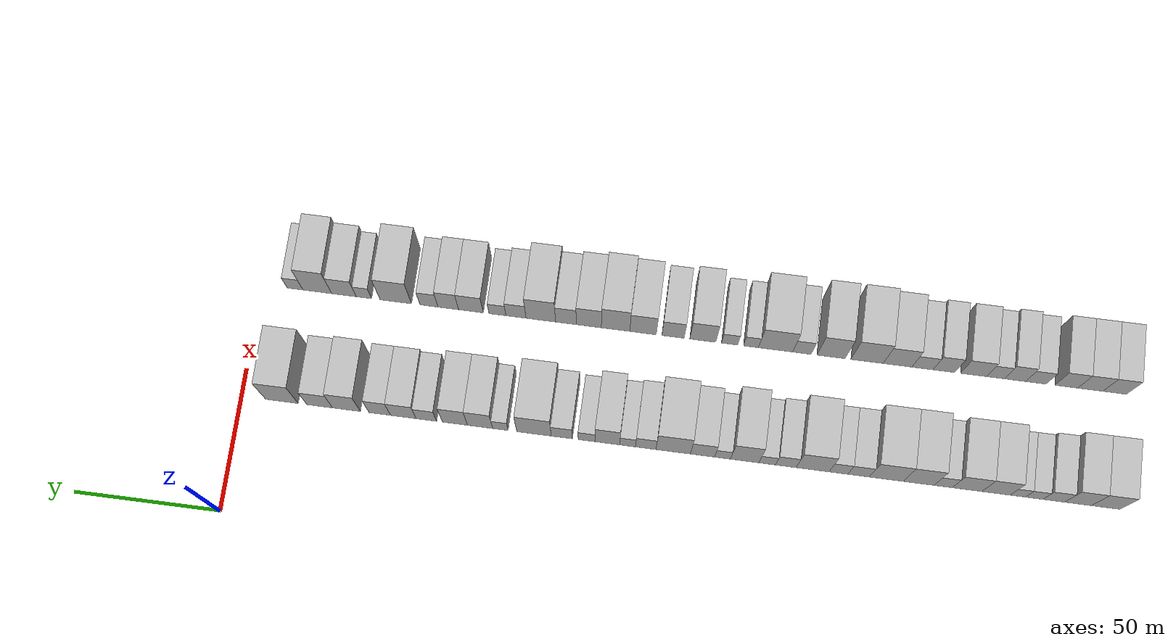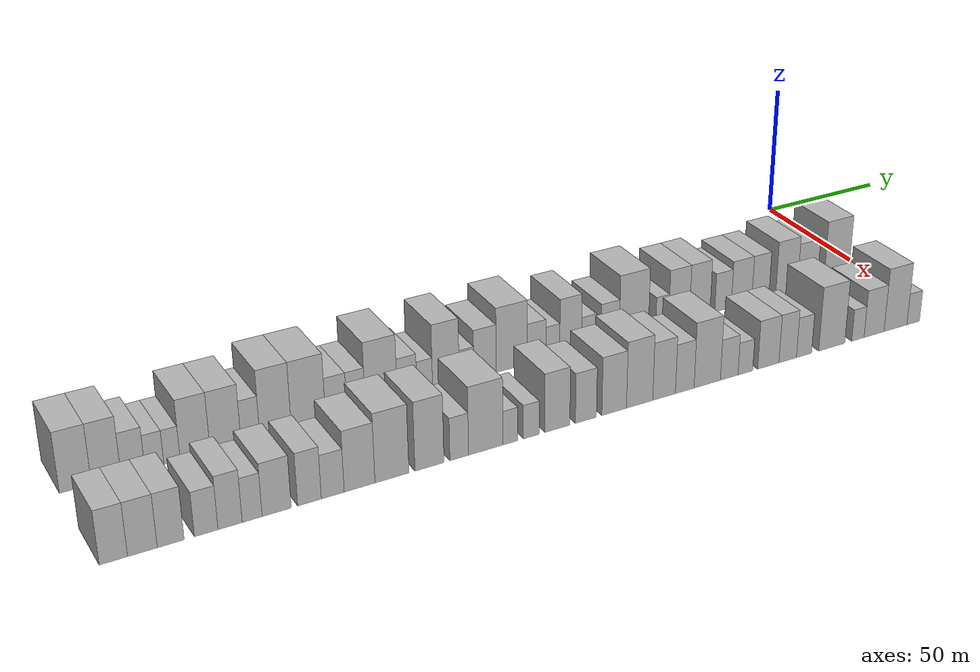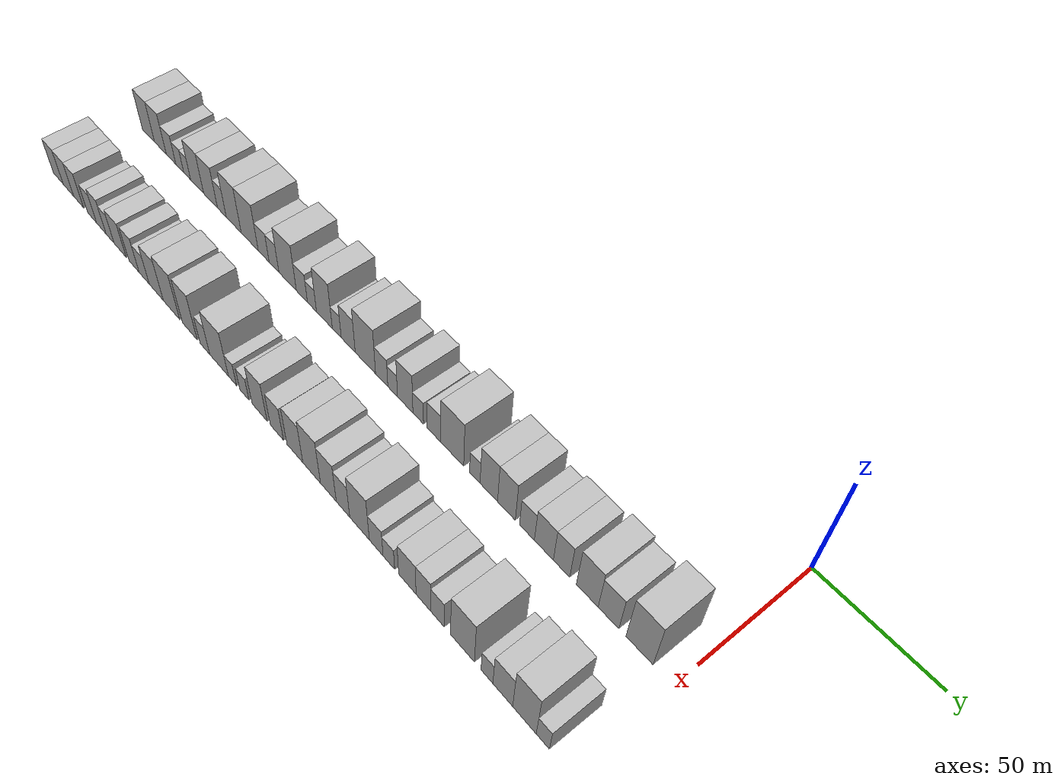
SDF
<sdf version="1.6">
 <world name="default">
  <model name="building_1">
   <static>1</static>
   <pose>50.0000 -295.1970 0 0.000000 0.000000 0.000000</pose>
   <link name="link">
    <pose>0 0 10.50 0 0 0</pose>
    <collision name="collision"><geometry><box><size>20.0000 9.6060 21.0000</size></box></geometry></collision>
    <visual name="visual">
     <cast_shadows>0</cast_shadows>
     <geometry><box><size>20.0000 9.6060 21.0000</size></box></geometry>
     <material>
      <script>
       <uri>model://HANNAS_wall/materials/scripts</uri>
       <uri>model://HANNAS_wall/materials/textures</uri>
       <name>vrc/HANNAS_wall</name>
      </script>
     </material>
    </visual>
   </link>
  </model>
  <model name="building_2">
   <static>1</static>
   <pose>50.0000 -285.8825 0 0.000000 0.000000 0.000000</pose>
   <link name="link">
    <pose>0 0 10.50 0 0 0</pose>
    <collision name="collision"><geometry><box><size>20.0000 9.0231 21.0000</size></box></geometry></collision>
    <visual name="visual">
     <cast_shadows>0</cast_shadows>
     <geometry><box><size>20.0000 9.0231 21.0000</size></box></geometry>
     <material>
      <script>
       <uri>model://HANNAS_wall/materials/scripts</uri>
       <uri>model://HANNAS_wall/materials/textures</uri>
       <name>vrc/HANNAS_wall</name>
      </script>
     </material>
    </visual>
   </link>
  </model>
  <model name="building_3">
   <static>1</static>
   <pose>50.0000 -277.6992 0 0.000000 0.000000 0.000000</pose>
   <link name="link">
    <pose>0 0 7.50 0 0 0</pose>
    <collision name="collision"><geometry><box><size>20.0000 7.3435 15.0000</size></box></geometry></collision>
    <visual name="visual">
     <cast_shadows>0</cast_shadows>
     <geometry><box><size>20.0000 7.3435 15.0000</size></box></geometry>
     <material>
      <script>
       <uri>model://HANNAS_wall/materials/scripts</uri>
       <uri>model://HANNAS_wall/materials/textures</uri>
       <name>vrc/HANNAS_wall</name>
      </script>
     </material>
    </visual>
   </link>
  </model>
  <model name="building_4">
   <static>1</static>
   <pose>50.0000 -271.0660 0 0.000000 0.000000 0.000000</pose>
   <link name="link">
    <pose>0 0 6.00 0 0 0</pose>
    <collision name="collision"><geometry><box><size>20.0000 5.9230 12.0000</size></box></geometry></collision>
    <visual name="visual">
     <cast_shadows>0</cast_shadows>
     <geometry><box><size>20.0000 5.9230 12.0000</size></box></geometry>
     <material>
      <script>
       <uri>model://HANNAS_wall/materials/scripts</uri>
       <uri>model://HANNAS_wall/materials/textures</uri>
       <name>vrc/HANNAS_wall</name>
      </script>
     </material>
    </visual>
   </link>
  </model>
  <model name="building_5">
   <static>1</static>
   <pose>50.0000 -265.5462 0 0.000000 0.000000 0.000000</pose>
   <link name="link">
    <pose>0 0 6.00 0 0 0</pose>
    <collision name="collision"><geometry><box><size>20.0000 5.1166 12.0000</size></box></geometry></collision>
    <visual name="visual">
     <cast_shadows>0</cast_shadows>
     <geometry><box><size>20.0000 5.1166 12.0000</size></box></geometry>
     <material>
      <script>
       <uri>model://HANNAS_wall/materials/scripts</uri>
       <uri>model://HANNAS_wall/materials/textures</uri>
       <name>vrc/HANNAS_wall</name>
      </script>
     </material>
    </visual>
   </link>
  </model>
  <model name="building_6">
   <static>1</static>
   <pose>50.0000 -258.2183 0 0.000000 0.000000 0.000000</pose>
   <link name="link">
    <pose>0 0 10.50 0 0 0</pose>
    <collision name="collision"><geometry><box><size>20.0000 9.5392 21.0000</size></box></geometry></collision>
    <visual name="visual">
     <cast_shadows>0</cast_shadows>
     <geometry><box><size>20.0000 9.5392 21.0000</size></box></geometry>
     <material>
      <script>
       <uri>model://HANNAS_wall/materials/scripts</uri>
       <uri>model://HANNAS_wall/materials/textures</uri>
       <name>vrc/HANNAS_wall</name>
      </script>
     </material>
    </visual>
   </link>
  </model>
  <model name="building_7">
   <static>1</static>
   <pose>50.0000 -248.4536 0 0.000000 0.000000 0.000000</pose>
   <link name="link">
    <pose>0 0 10.50 0 0 0</pose>
    <collision name="collision"><geometry><box><size>20.0000 9.9902 21.0000</size></box></geometry></collision>
    <visual name="visual">
     <cast_shadows>0</cast_shadows>
     <geometry><box><size>20.0000 9.9902 21.0000</size></box></geometry>
     <material>
      <script>
       <uri>model://HANNAS_wall/materials/scripts</uri>
       <uri>model://HANNAS_wall/materials/textures</uri>
       <name>vrc/HANNAS_wall</name>
      </script>
     </material>
    </visual>
   </link>
  </model>
  <model name="building_8">
   <static>1</static>
   <pose>50.0000 -240.3835 0 0.000000 0.000000 0.000000</pose>
   <link name="link">
    <pose>0 0 7.50 0 0 0</pose>
    <collision name="collision"><geometry><box><size>20.0000 6.1500 15.0000</size></box></geometry></collision>
    <visual name="visual">
     <cast_shadows>0</cast_shadows>
     <geometry><box><size>20.0000 6.1500 15.0000</size></box></geometry>
     <material>
      <script>
       <uri>model://HANNAS_wall/materials/scripts</uri>
       <uri>model://HANNAS_wall/materials/textures</uri>
       <name>vrc/HANNAS_wall</name>
      </script>
     </material>
    </visual>
   </link>
  </model>
  <model name="building_9">
   <static>1</static>
   <pose>50.0000 -232.0826 0 0.000000 0.000000 0.000000</pose>
   <link name="link">
    <pose>0 0 12.00 0 0 0</pose>
    <collision name="collision"><geometry><box><size>20.0000 10.4518 24.0000</size></box></geometry></collision>
    <visual name="visual">
     <cast_shadows>0</cast_shadows>
     <geometry><box><size>20.0000 10.4518 24.0000</size></box></geometry>
     <material>
      <script>
       <uri>model://HANNAS_wall/materials/scripts</uri>
       <uri>model://HANNAS_wall/materials/textures</uri>
       <name>vrc/HANNAS_wall</name>
      </script>
     </material>
    </visual>
   </link>
  </model>
  <model name="building_10">
   <static>1</static>
   <pose>50.0000 -221.0790 0 0.000000 0.000000 0.000000</pose>
   <link name="link">
    <pose>0 0 12.00 0 0 0</pose>
    <collision name="collision"><geometry><box><size>20.0000 11.5555 24.0000</size></box></geometry></collision>
    <visual name="visual">
     <cast_shadows>0</cast_shadows>
     <geometry><box><size>20.0000 11.5555 24.0000</size></box></geometry>
     <material>
      <script>
       <uri>model://HANNAS_wall/materials/scripts</uri>
       <uri>model://HANNAS_wall/materials/textures</uri>
       <name>vrc/HANNAS_wall</name>
      </script>
     </material>
    </visual>
   </link>
  </model>
  <model name="building_11">
   <static>1</static>
   <pose>50.0000 -211.6667 0 0.000000 0.000000 0.000000</pose>
   <link name="link">
    <pose>0 0 7.50 0 0 0</pose>
    <collision name="collision"><geometry><box><size>20.0000 7.2691 15.0000</size></box></geometry></collision>
    <visual name="visual">
     <cast_shadows>0</cast_shadows>
     <geometry><box><size>20.0000 7.2691 15.0000</size></box></geometry>
     <material>
      <script>
       <uri>model://HANNAS_wall/materials/scripts</uri>
       <uri>model://HANNAS_wall/materials/textures</uri>
       <name>vrc/HANNAS_wall</name>
      </script>
     </material>
    </visual>
   </link>
  </model>
  <model name="building_12">
   <static>1</static>
   <pose>50.0000 -204.8449 0 0.000000 0.000000 0.000000</pose>
   <link name="link">
    <pose>0 0 7.50 0 0 0</pose>
    <collision name="collision"><geometry><box><size>20.0000 6.3745 15.0000</size></box></geometry></collision>
    <visual name="visual">
     <cast_shadows>0</cast_shadows>
     <geometry><box><size>20.0000 6.3745 15.0000</size></box></geometry>
     <material>
      <script>
       <uri>model://HANNAS_wall/materials/scripts</uri>
       <uri>model://HANNAS_wall/materials/textures</uri>
       <name>vrc/HANNAS_wall</name>
      </script>
     </material>
    </visual>
   </link>
  </model>
  <model name="building_13">
   <static>1</static>
   <pose>50.0000 -196.0315 0 0.000000 0.000000 0.000000</pose>
   <link name="link">
    <pose>0 0 12.00 0 0 0</pose>
    <collision name="collision"><geometry><box><size>20.0000 11.2523 24.0000</size></box></geometry></collision>
    <visual name="visual">
     <cast_shadows>0</cast_shadows>
     <geometry><box><size>20.0000 11.2523 24.0000</size></box></geometry>
     <material>
      <script>
       <uri>model://HANNAS_wall/materials/scripts</uri>
       <uri>model://HANNAS_wall/materials/textures</uri>
       <name>vrc/HANNAS_wall</name>
      </script>
     </material>
    </visual>
   </link>
  </model>
  <model name="building_14">
   <static>1</static>
   <pose>50.0000 -186.9027 0 0.000000 0.000000 0.000000</pose>
   <link name="link">
    <pose>0 0 7.50 0 0 0</pose>
    <collision name="collision"><geometry><box><size>20.0000 7.0055 15.0000</size></box></geometry></collision>
    <visual name="visual">
     <cast_shadows>0</cast_shadows>
     <geometry><box><size>20.0000 7.0055 15.0000</size></box></geometry>
     <material>
      <script>
       <uri>model://HANNAS_wall/materials/scripts</uri>
       <uri>model://HANNAS_wall/materials/textures</uri>
       <name>vrc/HANNAS_wall</name>
      </script>
     </material>
    </visual>
   </link>
  </model>
  <model name="building_15">
   <static>1</static>
   <pose>50.0000 -180.5846 0 0.000000 0.000000 0.000000</pose>
   <link name="link">
    <pose>0 0 6.00 0 0 0</pose>
    <collision name="collision"><geometry><box><size>20.0000 5.6305 12.0000</size></box></geometry></collision>
    <visual name="visual">
     <cast_shadows>0</cast_shadows>
     <geometry><box><size>20.0000 5.6305 12.0000</size></box></geometry>
     <material>
      <script>
       <uri>model://HANNAS_wall/materials/scripts</uri>
       <uri>model://HANNAS_wall/materials/textures</uri>
       <name>vrc/HANNAS_wall</name>
      </script>
     </material>
    </visual>
   </link>
  </model>
  <model name="building_16">
   <static>1</static>
   <pose>50.0000 -172.9262 0 0.000000 0.000000 0.000000</pose>
   <link name="link">
    <pose>0 0 12.00 0 0 0</pose>
    <collision name="collision"><geometry><box><size>20.0000 9.6863 24.0000</size></box></geometry></collision>
    <visual name="visual">
     <cast_shadows>0</cast_shadows>
     <geometry><box><size>20.0000 9.6863 24.0000</size></box></geometry>
     <material>
      <script>
       <uri>model://HANNAS_wall/materials/scripts</uri>
       <uri>model://HANNAS_wall/materials/textures</uri>
       <name>vrc/HANNAS_wall</name>
      </script>
     </material>
    </visual>
   </link>
  </model>
  <model name="building_17">
   <static>1</static>
   <pose>50.0000 -165.3919 0 0.000000 0.000000 0.000000</pose>
   <link name="link">
    <pose>0 0 6.00 0 0 0</pose>
    <collision name="collision"><geometry><box><size>20.0000 5.3823 12.0000</size></box></geometry></collision>
    <visual name="visual">
     <cast_shadows>0</cast_shadows>
     <geometry><box><size>20.0000 5.3823 12.0000</size></box></geometry>
     <material>
      <script>
       <uri>model://HANNAS_wall/materials/scripts</uri>
       <uri>model://HANNAS_wall/materials/textures</uri>
       <name>vrc/HANNAS_wall</name>
      </script>
     </material>
    </visual>
   </link>
  </model>
  <model name="building_18">
   <static>1</static>
   <pose>50.0000 -158.5544 0 0.000000 0.000000 0.000000</pose>
   <link name="link">
    <pose>0 0 9.00 0 0 0</pose>
    <collision name="collision"><geometry><box><size>20.0000 8.2926 18.0000</size></box></geometry></collision>
    <visual name="visual">
     <cast_shadows>0</cast_shadows>
     <geometry><box><size>20.0000 8.2926 18.0000</size></box></geometry>
     <material>
      <script>
       <uri>model://HANNAS_wall/materials/scripts</uri>
       <uri>model://HANNAS_wall/materials/textures</uri>
       <name>vrc/HANNAS_wall</name>
      </script>
     </material>
    </visual>
   </link>
  </model>
  <model name="building_19">
   <static>1</static>
   <pose>50.0000 -148.5214 0 0.000000 0.000000 0.000000</pose>
   <link name="link">
    <pose>0 0 12.00 0 0 0</pose>
    <collision name="collision"><geometry><box><size>20.0000 11.7735 24.0000</size></box></geometry></collision>
    <visual name="visual">
     <cast_shadows>0</cast_shadows>
     <geometry><box><size>20.0000 11.7735 24.0000</size></box></geometry>
     <material>
      <script>
       <uri>model://HANNAS_wall/materials/scripts</uri>
       <uri>model://HANNAS_wall/materials/textures</uri>
       <name>vrc/HANNAS_wall</name>
      </script>
     </material>
    </visual>
   </link>
  </model>
  <model name="building_20">
   <static>1</static>
   <pose>50.0000 -139.1447 0 0.000000 0.000000 0.000000</pose>
   <link name="link">
    <pose>0 0 7.50 0 0 0</pose>
    <collision name="collision"><geometry><box><size>20.0000 6.9799 15.0000</size></box></geometry></collision>
    <visual name="visual">
     <cast_shadows>0</cast_shadows>
     <geometry><box><size>20.0000 6.9799 15.0000</size></box></geometry>
     <material>
      <script>
       <uri>model://HANNAS_wall/materials/scripts</uri>
       <uri>model://HANNAS_wall/materials/textures</uri>
       <name>vrc/HANNAS_wall</name>
      </script>
     </material>
    </visual>
   </link>
  </model>
  <model name="building_21">
   <static>1</static>
   <pose>50.0000 -132.9606 0 0.000000 0.000000 0.000000</pose>
   <link name="link">
    <pose>0 0 6.00 0 0 0</pose>
    <collision name="collision"><geometry><box><size>20.0000 5.3883 12.0000</size></box></geometry></collision>
    <visual name="visual">
     <cast_shadows>0</cast_shadows>
     <geometry><box><size>20.0000 5.3883 12.0000</size></box></geometry>
     <material>
      <script>
       <uri>model://HANNAS_wall/materials/scripts</uri>
       <uri>model://HANNAS_wall/materials/textures</uri>
       <name>vrc/HANNAS_wall</name>
      </script>
     </material>
    </visual>
   </link>
  </model>
  <model name="building_22">
   <static>1</static>
   <pose>50.0000 -126.0294 0 0.000000 0.000000 0.000000</pose>
   <link name="link">
    <pose>0 0 10.50 0 0 0</pose>
    <collision name="collision"><geometry><box><size>20.0000 8.4740 21.0000</size></box></geometry></collision>
    <visual name="visual">
     <cast_shadows>0</cast_shadows>
     <geometry><box><size>20.0000 8.4740 21.0000</size></box></geometry>
     <material>
      <script>
       <uri>model://HANNAS_wall/materials/scripts</uri>
       <uri>model://HANNAS_wall/materials/textures</uri>
       <name>vrc/HANNAS_wall</name>
      </script>
     </material>
    </visual>
   </link>
  </model>
  <model name="building_23">
   <static>1</static>
   <pose>50.0000 -118.9303 0 0.000000 0.000000 0.000000</pose>
   <link name="link">
    <pose>0 0 6.00 0 0 0</pose>
    <collision name="collision"><geometry><box><size>20.0000 5.7242 12.0000</size></box></geometry></collision>
    <visual name="visual">
     <cast_shadows>0</cast_shadows>
     <geometry><box><size>20.0000 5.7242 12.0000</size></box></geometry>
     <material>
      <script>
       <uri>model://HANNAS_wall/materials/scripts</uri>
       <uri>model://HANNAS_wall/materials/textures</uri>
       <name>vrc/HANNAS_wall</name>
      </script>
     </material>
    </visual>
   </link>
  </model>
  <model name="building_24">
   <static>1</static>
   <pose>50.0000 -110.4495 0 0.000000 0.000000 0.000000</pose>
   <link name="link">
    <pose>0 0 7.50 0 0 0</pose>
    <collision name="collision"><geometry><box><size>20.0000 7.2374 15.0000</size></box></geometry></collision>
    <visual name="visual">
     <cast_shadows>0</cast_shadows>
     <geometry><box><size>20.0000 7.2374 15.0000</size></box></geometry>
     <material>
      <script>
       <uri>model://HANNAS_wall/materials/scripts</uri>
       <uri>model://HANNAS_wall/materials/textures</uri>
       <name>vrc/HANNAS_wall</name>
      </script>
     </material>
    </visual>
   </link>
  </model>
  <model name="building_25">
   <static>1</static>
   <pose>50.0000 -100.9167 0 0.000000 0.000000 0.000000</pose>
   <link name="link">
    <pose>0 0 12.00 0 0 0</pose>
    <collision name="collision"><geometry><box><size>20.0000 11.8284 24.0000</size></box></geometry></collision>
    <visual name="visual">
     <cast_shadows>0</cast_shadows>
     <geometry><box><size>20.0000 11.8284 24.0000</size></box></geometry>
     <material>
      <script>
       <uri>model://HANNAS_wall/materials/scripts</uri>
       <uri>model://HANNAS_wall/materials/textures</uri>
       <name>vrc/HANNAS_wall</name>
      </script>
     </material>
    </visual>
   </link>
  </model>
  <model name="building_26">
   <static>1</static>
   <pose>50.0000 -89.3581 0 0.000000 0.000000 0.000000</pose>
   <link name="link">
    <pose>0 0 6.00 0 0 0</pose>
    <collision name="collision"><geometry><box><size>20.0000 5.2886 12.0000</size></box></geometry></collision>
    <visual name="visual">
     <cast_shadows>0</cast_shadows>
     <geometry><box><size>20.0000 5.2886 12.0000</size></box></geometry>
     <material>
      <script>
       <uri>model://HANNAS_wall/materials/scripts</uri>
       <uri>model://HANNAS_wall/materials/textures</uri>
       <name>vrc/HANNAS_wall</name>
      </script>
     </material>
    </visual>
   </link>
  </model>
  <model name="building_27">
   <static>1</static>
   <pose>50.0000 -82.3834 0 0.000000 0.000000 0.000000</pose>
   <link name="link">
    <pose>0 0 10.50 0 0 0</pose>
    <collision name="collision"><geometry><box><size>20.0000 8.6609 21.0000</size></box></geometry></collision>
    <visual name="visual">
     <cast_shadows>0</cast_shadows>
     <geometry><box><size>20.0000 8.6609 21.0000</size></box></geometry>
     <material>
      <script>
       <uri>model://HANNAS_wall/materials/scripts</uri>
       <uri>model://HANNAS_wall/materials/textures</uri>
       <name>vrc/HANNAS_wall</name>
      </script>
     </material>
    </visual>
   </link>
  </model>
  <model name="building_28">
   <static>1</static>
   <pose>50.0000 -73.7411 0 0.000000 0.000000 0.000000</pose>
   <link name="link">
    <pose>0 0 10.50 0 0 0</pose>
    <collision name="collision"><geometry><box><size>20.0000 8.6237 21.0000</size></box></geometry></collision>
    <visual name="visual">
     <cast_shadows>0</cast_shadows>
     <geometry><box><size>20.0000 8.6237 21.0000</size></box></geometry>
     <material>
      <script>
       <uri>model://HANNAS_wall/materials/scripts</uri>
       <uri>model://HANNAS_wall/materials/textures</uri>
       <name>vrc/HANNAS_wall</name>
      </script>
     </material>
    </visual>
   </link>
  </model>
  <model name="building_29">
   <static>1</static>
   <pose>50.0000 -63.8989 0 0.000000 0.000000 0.000000</pose>
   <link name="link">
    <pose>0 0 7.50 0 0 0</pose>
    <collision name="collision"><geometry><box><size>20.0000 7.0606 15.0000</size></box></geometry></collision>
    <visual name="visual">
     <cast_shadows>0</cast_shadows>
     <geometry><box><size>20.0000 7.0606 15.0000</size></box></geometry>
     <material>
      <script>
       <uri>model://HANNAS_wall/materials/scripts</uri>
       <uri>model://HANNAS_wall/materials/textures</uri>
       <name>vrc/HANNAS_wall</name>
      </script>
     </material>
    </visual>
   </link>
  </model>
  <model name="building_30">
   <static>1</static>
   <pose>50.0000 -55.9622 0 0.000000 0.000000 0.000000</pose>
   <link name="link">
    <pose>0 0 9.00 0 0 0</pose>
    <collision name="collision"><geometry><box><size>20.0000 8.8129 18.0000</size></box></geometry></collision>
    <visual name="visual">
     <cast_shadows>0</cast_shadows>
     <geometry><box><size>20.0000 8.8129 18.0000</size></box></geometry>
     <material>
      <script>
       <uri>model://HANNAS_wall/materials/scripts</uri>
       <uri>model://HANNAS_wall/materials/textures</uri>
       <name>vrc/HANNAS_wall</name>
      </script>
     </material>
    </visual>
   </link>
  </model>
  <model name="building_31">
   <static>1</static>
   <pose>50.0000 -47.8337 0 0.000000 0.000000 0.000000</pose>
   <link name="link">
    <pose>0 0 9.00 0 0 0</pose>
    <collision name="collision"><geometry><box><size>20.0000 7.4441 18.0000</size></box></geometry></collision>
    <visual name="visual">
     <cast_shadows>0</cast_shadows>
     <geometry><box><size>20.0000 7.4441 18.0000</size></box></geometry>
     <material>
      <script>
       <uri>model://HANNAS_wall/materials/scripts</uri>
       <uri>model://HANNAS_wall/materials/textures</uri>
       <name>vrc/HANNAS_wall</name>
      </script>
     </material>
    </visual>
   </link>
  </model>
  <model name="building_32">
   <static>1</static>
   <pose>50.0000 -36.3141 0 0.000000 0.000000 0.000000</pose>
   <link name="link">
    <pose>0 0 10.50 0 0 0</pose>
    <collision name="collision"><geometry><box><size>20.0000 9.5950 21.0000</size></box></geometry></collision>
    <visual name="visual">
     <cast_shadows>0</cast_shadows>
     <geometry><box><size>20.0000 9.5950 21.0000</size></box></geometry>
     <material>
      <script>
       <uri>model://HANNAS_wall/materials/scripts</uri>
       <uri>model://HANNAS_wall/materials/textures</uri>
       <name>vrc/HANNAS_wall</name>
      </script>
     </material>
    </visual>
   </link>
  </model>
  <model name="building_33">
   <static>1</static>
   <pose>50.0000 -27.0605 0 0.000000 0.000000 0.000000</pose>
   <link name="link">
    <pose>0 0 9.00 0 0 0</pose>
    <collision name="collision"><geometry><box><size>20.0000 8.9123 18.0000</size></box></geometry></collision>
    <visual name="visual">
     <cast_shadows>0</cast_shadows>
     <geometry><box><size>20.0000 8.9123 18.0000</size></box></geometry>
     <material>
      <script>
       <uri>model://HANNAS_wall/materials/scripts</uri>
       <uri>model://HANNAS_wall/materials/textures</uri>
       <name>vrc/HANNAS_wall</name>
      </script>
     </material>
    </visual>
   </link>
  </model>
  <model name="building_34">
   <static>1</static>
   <pose>50.0000 -13.9487 0 0.000000 0.000000 0.000000</pose>
   <link name="link">
    <pose>0 0 12.00 0 0 0</pose>
    <collision name="collision"><geometry><box><size>20.0000 11.3113 24.0000</size></box></geometry></collision>
    <visual name="visual">
     <cast_shadows>0</cast_shadows>
     <geometry><box><size>20.0000 11.3113 24.0000</size></box></geometry>
     <material>
      <script>
       <uri>model://HANNAS_wall/materials/scripts</uri>
       <uri>model://HANNAS_wall/materials/textures</uri>
       <name>vrc/HANNAS_wall</name>
      </script>
     </material>
    </visual>
   </link>
  </model>
  <model name="building_69">
   <static>1</static>
   <pose>90.0000 -295.9554 0 0.000000 0.000000 0.000000</pose>
   <link name="link">
    <pose>0 0 9.00 0 0 0</pose>
    <collision name="collision"><geometry><box><size>20.0000 8.0892 18.0000</size></box></geometry></collision>
    <visual name="visual">
     <cast_shadows>0</cast_shadows>
     <geometry><box><size>20.0000 8.0892 18.0000</size></box></geometry>
     <material>
      <script>
       <uri>model://HANNAS_wall/materials/scripts</uri>
       <uri>model://HANNAS_wall/materials/textures</uri>
       <name>vrc/HANNAS_wall</name>
      </script>
     </material>
    </visual>
   </link>
  </model>
  <model name="building_70">
   <static>1</static>
   <pose>90.0000 -287.6321 0 0.000000 0.000000 0.000000</pose>
   <link name="link">
    <pose>0 0 9.00 0 0 0</pose>
    <collision name="collision"><geometry><box><size>20.0000 8.5573 18.0000</size></box></geometry></collision>
    <visual name="visual">
     <cast_shadows>0</cast_shadows>
     <geometry><box><size>20.0000 8.5573 18.0000</size></box></geometry>
     <material>
      <script>
       <uri>model://HANNAS_wall/materials/scripts</uri>
       <uri>model://HANNAS_wall/materials/textures</uri>
       <name>vrc/HANNAS_wall</name>
      </script>
     </material>
    </visual>
   </link>
  </model>
  <model name="building_71">
   <static>1</static>
   <pose>90.0000 -279.4231 0 0.000000 0.000000 0.000000</pose>
   <link name="link">
    <pose>0 0 9.00 0 0 0</pose>
    <collision name="collision"><geometry><box><size>20.0000 7.8606 18.0000</size></box></geometry></collision>
    <visual name="visual">
     <cast_shadows>0</cast_shadows>
     <geometry><box><size>20.0000 7.8606 18.0000</size></box></geometry>
     <material>
      <script>
       <uri>model://HANNAS_wall/materials/scripts</uri>
       <uri>model://HANNAS_wall/materials/textures</uri>
       <name>vrc/HANNAS_wall</name>
      </script>
     </material>
    </visual>
   </link>
  </model>
  <model name="building_72">
   <static>1</static>
   <pose>90.0000 -268.9781 0 0.000000 0.000000 0.000000</pose>
   <link name="link">
    <pose>0 0 7.50 0 0 0</pose>
    <collision name="collision"><geometry><box><size>20.0000 7.0294 15.0000</size></box></geometry></collision>
    <visual name="visual">
     <cast_shadows>0</cast_shadows>
     <geometry><box><size>20.0000 7.0294 15.0000</size></box></geometry>
     <material>
      <script>
       <uri>model://HANNAS_wall/materials/scripts</uri>
       <uri>model://HANNAS_wall/materials/textures</uri>
       <name>vrc/HANNAS_wall</name>
      </script>
     </material>
    </visual>
   </link>
  </model>
  <model name="building_73">
   <static>1</static>
   <pose>90.0000 -261.8177 0 0.000000 0.000000 0.000000</pose>
   <link name="link">
    <pose>0 0 9.00 0 0 0</pose>
    <collision name="collision"><geometry><box><size>20.0000 7.2915 18.0000</size></box></geometry></collision>
    <visual name="visual">
     <cast_shadows>0</cast_shadows>
     <geometry><box><size>20.0000 7.2915 18.0000</size></box></geometry>
     <material>
      <script>
       <uri>model://HANNAS_wall/materials/scripts</uri>
       <uri>model://HANNAS_wall/materials/textures</uri>
       <name>vrc/HANNAS_wall</name>
      </script>
     </material>
    </visual>
   </link>
  </model>
  <model name="building_74">
   <static>1</static>
   <pose>90.0000 -255.1266 0 0.000000 0.000000 0.000000</pose>
   <link name="link">
    <pose>0 0 7.50 0 0 0</pose>
    <collision name="collision"><geometry><box><size>20.0000 6.0905 15.0000</size></box></geometry></collision>
    <visual name="visual">
     <cast_shadows>0</cast_shadows>
     <geometry><box><size>20.0000 6.0905 15.0000</size></box></geometry>
     <material>
      <script>
       <uri>model://HANNAS_wall/materials/scripts</uri>
       <uri>model://HANNAS_wall/materials/textures</uri>
       <name>vrc/HANNAS_wall</name>
      </script>
     </material>
    </visual>
   </link>
  </model>
  <model name="building_75">
   <static>1</static>
   <pose>90.0000 -247.5939 0 0.000000 0.000000 0.000000</pose>
   <link name="link">
    <pose>0 0 9.00 0 0 0</pose>
    <collision name="collision"><geometry><box><size>20.0000 8.9750 18.0000</size></box></geometry></collision>
    <visual name="visual">
     <cast_shadows>0</cast_shadows>
     <geometry><box><size>20.0000 8.9750 18.0000</size></box></geometry>
     <material>
      <script>
       <uri>model://HANNAS_wall/materials/scripts</uri>
       <uri>model://HANNAS_wall/materials/textures</uri>
       <name>vrc/HANNAS_wall</name>
      </script>
     </material>
    </visual>
   </link>
  </model>
  <model name="building_76">
   <static>1</static>
   <pose>90.0000 -237.3870 0 0.000000 0.000000 0.000000</pose>
   <link name="link">
    <pose>0 0 9.00 0 0 0</pose>
    <collision name="collision"><geometry><box><size>20.0000 7.4387 18.0000</size></box></geometry></collision>
    <visual name="visual">
     <cast_shadows>0</cast_shadows>
     <geometry><box><size>20.0000 7.4387 18.0000</size></box></geometry>
     <material>
      <script>
       <uri>model://HANNAS_wall/materials/scripts</uri>
       <uri>model://HANNAS_wall/materials/textures</uri>
       <name>vrc/HANNAS_wall</name>
      </script>
     </material>
    </visual>
   </link>
  </model>
  <model name="building_77">
   <static>1</static>
   <pose>90.0000 -230.0299 0 0.000000 0.000000 0.000000</pose>
   <link name="link">
    <pose>0 0 7.50 0 0 0</pose>
    <collision name="collision"><geometry><box><size>20.0000 7.2755 15.0000</size></box></geometry></collision>
    <visual name="visual">
     <cast_shadows>0</cast_shadows>
     <geometry><box><size>20.0000 7.2755 15.0000</size></box></geometry>
     <material>
      <script>
       <uri>model://HANNAS_wall/materials/scripts</uri>
       <uri>model://HANNAS_wall/materials/textures</uri>
       <name>vrc/HANNAS_wall</name>
      </script>
     </material>
    </visual>
   </link>
  </model>
  <model name="building_78">
   <static>1</static>
   <pose>90.0000 -221.4246 0 0.000000 0.000000 0.000000</pose>
   <link name="link">
    <pose>0 0 10.50 0 0 0</pose>
    <collision name="collision"><geometry><box><size>20.0000 9.9351 21.0000</size></box></geometry></collision>
    <visual name="visual">
     <cast_shadows>0</cast_shadows>
     <geometry><box><size>20.0000 9.9351 21.0000</size></box></geometry>
     <material>
      <script>
       <uri>model://HANNAS_wall/materials/scripts</uri>
       <uri>model://HANNAS_wall/materials/textures</uri>
       <name>vrc/HANNAS_wall</name>
      </script>
     </material>
    </visual>
   </link>
  </model>
  <model name="building_79">
   <static>1</static>
   <pose>90.0000 -210.8871 0 0.000000 0.000000 0.000000</pose>
   <link name="link">
    <pose>0 0 12.00 0 0 0</pose>
    <collision name="collision"><geometry><box><size>20.0000 11.1399 24.0000</size></box></geometry></collision>
    <visual name="visual">
     <cast_shadows>0</cast_shadows>
     <geometry><box><size>20.0000 11.1399 24.0000</size></box></geometry>
     <material>
      <script>
       <uri>model://HANNAS_wall/materials/scripts</uri>
       <uri>model://HANNAS_wall/materials/textures</uri>
       <name>vrc/HANNAS_wall</name>
      </script>
     </material>
    </visual>
   </link>
  </model>
  <model name="building_80">
   <static>1</static>
   <pose>90.0000 -198.4518 0 0.000000 0.000000 0.000000</pose>
   <link name="link">
    <pose>0 0 12.00 0 0 0</pose>
    <collision name="collision"><geometry><box><size>20.0000 9.7307 24.0000</size></box></geometry></collision>
    <visual name="visual">
     <cast_shadows>0</cast_shadows>
     <geometry><box><size>20.0000 9.7307 24.0000</size></box></geometry>
     <material>
      <script>
       <uri>model://HANNAS_wall/materials/scripts</uri>
       <uri>model://HANNAS_wall/materials/textures</uri>
       <name>vrc/HANNAS_wall</name>
      </script>
     </material>
    </visual>
   </link>
  </model>
  <model name="building_81">
   <static>1</static>
   <pose>90.0000 -188.4050 0 0.000000 0.000000 0.000000</pose>
   <link name="link">
    <pose>0 0 7.50 0 0 0</pose>
    <collision name="collision"><geometry><box><size>20.0000 6.3630 15.0000</size></box></geometry></collision>
    <visual name="visual">
     <cast_shadows>0</cast_shadows>
     <geometry><box><size>20.0000 6.3630 15.0000</size></box></geometry>
     <material>
      <script>
       <uri>model://HANNAS_wall/materials/scripts</uri>
       <uri>model://HANNAS_wall/materials/textures</uri>
       <name>vrc/HANNAS_wall</name>
      </script>
     </material>
    </visual>
   </link>
  </model>
  <model name="building_82">
   <static>1</static>
   <pose>90.0000 -179.2791 0 0.000000 0.000000 0.000000</pose>
   <link name="link">
    <pose>0 0 12.00 0 0 0</pose>
    <collision name="collision"><geometry><box><size>20.0000 11.8889 24.0000</size></box></geometry></collision>
    <visual name="visual">
     <cast_shadows>0</cast_shadows>
     <geometry><box><size>20.0000 11.8889 24.0000</size></box></geometry>
     <material>
      <script>
       <uri>model://HANNAS_wall/materials/scripts</uri>
       <uri>model://HANNAS_wall/materials/textures</uri>
       <name>vrc/HANNAS_wall</name>
      </script>
     </material>
    </visual>
   </link>
  </model>
  <model name="building_83">
   <static>1</static>
   <pose>90.0000 -170.7591 0 0.000000 0.000000 0.000000</pose>
   <link name="link">
    <pose>0 0 6.00 0 0 0</pose>
    <collision name="collision"><geometry><box><size>20.0000 5.1512 12.0000</size></box></geometry></collision>
    <visual name="visual">
     <cast_shadows>0</cast_shadows>
     <geometry><box><size>20.0000 5.1512 12.0000</size></box></geometry>
     <material>
      <script>
       <uri>model://HANNAS_wall/materials/scripts</uri>
       <uri>model://HANNAS_wall/materials/textures</uri>
       <name>vrc/HANNAS_wall</name>
      </script>
     </material>
    </visual>
   </link>
  </model>
  <model name="building_84">
   <static>1</static>
   <pose>90.0000 -163.3737 0 0.000000 0.000000 0.000000</pose>
   <link name="link">
    <pose>0 0 6.00 0 0 0</pose>
    <collision name="collision"><geometry><box><size>20.0000 5.6195 12.0000</size></box></geometry></collision>
    <visual name="visual">
     <cast_shadows>0</cast_shadows>
     <geometry><box><size>20.0000 5.6195 12.0000</size></box></geometry>
     <material>
      <script>
       <uri>model://HANNAS_wall/materials/scripts</uri>
       <uri>model://HANNAS_wall/materials/textures</uri>
       <name>vrc/HANNAS_wall</name>
      </script>
     </material>
    </visual>
   </link>
  </model>
  <model name="building_85">
   <static>1</static>
   <pose>90.0000 -154.0616 0 0.000000 0.000000 0.000000</pose>
   <link name="link">
    <pose>0 0 10.50 0 0 0</pose>
    <collision name="collision"><geometry><box><size>20.0000 9.0048 21.0000</size></box></geometry></collision>
    <visual name="visual">
     <cast_shadows>0</cast_shadows>
     <geometry><box><size>20.0000 9.0048 21.0000</size></box></geometry>
     <material>
      <script>
       <uri>model://HANNAS_wall/materials/scripts</uri>
       <uri>model://HANNAS_wall/materials/textures</uri>
       <name>vrc/HANNAS_wall</name>
      </script>
     </material>
    </visual>
   </link>
  </model>
  <model name="building_86">
   <static>1</static>
   <pose>90.0000 -143.7127 0 0.000000 0.000000 0.000000</pose>
   <link name="link">
    <pose>0 0 9.00 0 0 0</pose>
    <collision name="collision"><geometry><box><size>20.0000 7.6928 18.0000</size></box></geometry></collision>
    <visual name="visual">
     <cast_shadows>0</cast_shadows>
     <geometry><box><size>20.0000 7.6928 18.0000</size></box></geometry>
     <material>
      <script>
       <uri>model://HANNAS_wall/materials/scripts</uri>
       <uri>model://HANNAS_wall/materials/textures</uri>
       <name>vrc/HANNAS_wall</name>
      </script>
     </material>
    </visual>
   </link>
  </model>
  <model name="building_87">
   <static>1</static>
   <pose>90.0000 -133.2873 0 0.000000 0.000000 0.000000</pose>
   <link name="link">
    <pose>0 0 10.50 0 0 0</pose>
    <collision name="collision"><geometry><box><size>20.0000 9.1580 21.0000</size></box></geometry></collision>
    <visual name="visual">
     <cast_shadows>0</cast_shadows>
     <geometry><box><size>20.0000 9.1580 21.0000</size></box></geometry>
     <material>
      <script>
       <uri>model://HANNAS_wall/materials/scripts</uri>
       <uri>model://HANNAS_wall/materials/textures</uri>
       <name>vrc/HANNAS_wall</name>
      </script>
     </material>
    </visual>
   </link>
  </model>
  <model name="building_88">
   <static>1</static>
   <pose>90.0000 -123.7427 0 0.000000 0.000000 0.000000</pose>
   <link name="link">
    <pose>0 0 12.00 0 0 0</pose>
    <collision name="collision"><geometry><box><size>20.0000 9.9313 24.0000</size></box></geometry></collision>
    <visual name="visual">
     <cast_shadows>0</cast_shadows>
     <geometry><box><size>20.0000 9.9313 24.0000</size></box></geometry>
     <material>
      <script>
       <uri>model://HANNAS_wall/materials/scripts</uri>
       <uri>model://HANNAS_wall/materials/textures</uri>
       <name>vrc/HANNAS_wall</name>
      </script>
     </material>
    </visual>
   </link>
  </model>
  <model name="building_89">
   <static>1</static>
   <pose>90.0000 -114.4428 0 0.000000 0.000000 0.000000</pose>
   <link name="link">
    <pose>0 0 10.50 0 0 0</pose>
    <collision name="collision"><geometry><box><size>20.0000 8.6684 21.0000</size></box></geometry></collision>
    <visual name="visual">
     <cast_shadows>0</cast_shadows>
     <geometry><box><size>20.0000 8.6684 21.0000</size></box></geometry>
     <material>
      <script>
       <uri>model://HANNAS_wall/materials/scripts</uri>
       <uri>model://HANNAS_wall/materials/textures</uri>
       <name>vrc/HANNAS_wall</name>
      </script>
     </material>
    </visual>
   </link>
  </model>
  <model name="building_90">
   <static>1</static>
   <pose>90.0000 -106.4865 0 0.000000 0.000000 0.000000</pose>
   <link name="link">
    <pose>0 0 9.00 0 0 0</pose>
    <collision name="collision"><geometry><box><size>20.0000 7.2442 18.0000</size></box></geometry></collision>
    <visual name="visual">
     <cast_shadows>0</cast_shadows>
     <geometry><box><size>20.0000 7.2442 18.0000</size></box></geometry>
     <material>
      <script>
       <uri>model://HANNAS_wall/materials/scripts</uri>
       <uri>model://HANNAS_wall/materials/textures</uri>
       <name>vrc/HANNAS_wall</name>
      </script>
     </material>
    </visual>
   </link>
  </model>
  <model name="building_91">
   <static>1</static>
   <pose>90.0000 -97.7010 0 0.000000 0.000000 0.000000</pose>
   <link name="link">
    <pose>0 0 12.00 0 0 0</pose>
    <collision name="collision"><geometry><box><size>20.0000 10.3267 24.0000</size></box></geometry></collision>
    <visual name="visual">
     <cast_shadows>0</cast_shadows>
     <geometry><box><size>20.0000 10.3267 24.0000</size></box></geometry>
     <material>
      <script>
       <uri>model://HANNAS_wall/materials/scripts</uri>
       <uri>model://HANNAS_wall/materials/textures</uri>
       <name>vrc/HANNAS_wall</name>
      </script>
     </material>
    </visual>
   </link>
  </model>
  <model name="building_92">
   <static>1</static>
   <pose>90.0000 -89.0206 0 0.000000 0.000000 0.000000</pose>
   <link name="link">
    <pose>0 0 7.50 0 0 0</pose>
    <collision name="collision"><geometry><box><size>20.0000 7.0343 15.0000</size></box></geometry></collision>
    <visual name="visual">
     <cast_shadows>0</cast_shadows>
     <geometry><box><size>20.0000 7.0343 15.0000</size></box></geometry>
     <material>
      <script>
       <uri>model://HANNAS_wall/materials/scripts</uri>
       <uri>model://HANNAS_wall/materials/textures</uri>
       <name>vrc/HANNAS_wall</name>
      </script>
     </material>
    </visual>
   </link>
  </model>
  <model name="building_93">
   <static>1</static>
   <pose>90.0000 -82.5600 0 0.000000 0.000000 0.000000</pose>
   <link name="link">
    <pose>0 0 6.00 0 0 0</pose>
    <collision name="collision"><geometry><box><size>20.0000 5.8870 12.0000</size></box></geometry></collision>
    <visual name="visual">
     <cast_shadows>0</cast_shadows>
     <geometry><box><size>20.0000 5.8870 12.0000</size></box></geometry>
     <material>
      <script>
       <uri>model://HANNAS_wall/materials/scripts</uri>
       <uri>model://HANNAS_wall/materials/textures</uri>
       <name>vrc/HANNAS_wall</name>
      </script>
     </material>
    </visual>
   </link>
  </model>
  <model name="building_94">
   <static>1</static>
   <pose>90.0000 -73.2933 0 0.000000 0.000000 0.000000</pose>
   <link name="link">
    <pose>0 0 9.00 0 0 0</pose>
    <collision name="collision"><geometry><box><size>20.0000 8.6464 18.0000</size></box></geometry></collision>
    <visual name="visual">
     <cast_shadows>0</cast_shadows>
     <geometry><box><size>20.0000 8.6464 18.0000</size></box></geometry>
     <material>
      <script>
       <uri>model://HANNAS_wall/materials/scripts</uri>
       <uri>model://HANNAS_wall/materials/textures</uri>
       <name>vrc/HANNAS_wall</name>
      </script>
     </material>
    </visual>
   </link>
  </model>
  <model name="building_95">
   <static>1</static>
   <pose>90.0000 -65.3604 0 0.000000 0.000000 0.000000</pose>
   <link name="link">
    <pose>0 0 9.00 0 0 0</pose>
    <collision name="collision"><geometry><box><size>20.0000 7.2193 18.0000</size></box></geometry></collision>
    <visual name="visual">
     <cast_shadows>0</cast_shadows>
     <geometry><box><size>20.0000 7.2193 18.0000</size></box></geometry>
     <material>
      <script>
       <uri>model://HANNAS_wall/materials/scripts</uri>
       <uri>model://HANNAS_wall/materials/textures</uri>
       <name>vrc/HANNAS_wall</name>
      </script>
     </material>
    </visual>
   </link>
  </model>
  <model name="building_96">
   <static>1</static>
   <pose>90.0000 -58.6061 0 0.000000 0.000000 0.000000</pose>
   <link name="link">
    <pose>0 0 7.50 0 0 0</pose>
    <collision name="collision"><geometry><box><size>20.0000 6.2893 15.0000</size></box></geometry></collision>
    <visual name="visual">
     <cast_shadows>0</cast_shadows>
     <geometry><box><size>20.0000 6.2893 15.0000</size></box></geometry>
     <material>
      <script>
       <uri>model://HANNAS_wall/materials/scripts</uri>
       <uri>model://HANNAS_wall/materials/textures</uri>
       <name>vrc/HANNAS_wall</name>
      </script>
     </material>
    </visual>
   </link>
  </model>
  <model name="building_97">
   <static>1</static>
   <pose>90.0000 -46.9511 0 0.000000 0.000000 0.000000</pose>
   <link name="link">
    <pose>0 0 12.00 0 0 0</pose>
    <collision name="collision"><geometry><box><size>20.0000 11.0206 24.0000</size></box></geometry></collision>
    <visual name="visual">
     <cast_shadows>0</cast_shadows>
     <geometry><box><size>20.0000 11.0206 24.0000</size></box></geometry>
     <material>
      <script>
       <uri>model://HANNAS_wall/materials/scripts</uri>
       <uri>model://HANNAS_wall/materials/textures</uri>
       <name>vrc/HANNAS_wall</name>
      </script>
     </material>
    </visual>
   </link>
  </model>
  <model name="building_98">
   <static>1</static>
   <pose>90.0000 -35.7841 0 0.000000 0.000000 0.000000</pose>
   <link name="link">
    <pose>0 0 6.00 0 0 0</pose>
    <collision name="collision"><geometry><box><size>20.0000 5.3135 12.0000</size></box></geometry></collision>
    <visual name="visual">
     <cast_shadows>0</cast_shadows>
     <geometry><box><size>20.0000 5.3135 12.0000</size></box></geometry>
     <material>
      <script>
       <uri>model://HANNAS_wall/materials/scripts</uri>
       <uri>model://HANNAS_wall/materials/textures</uri>
       <name>vrc/HANNAS_wall</name>
      </script>
     </material>
    </visual>
   </link>
  </model>
  <model name="building_99">
   <static>1</static>
   <pose>90.0000 -28.7833 0 0.000000 0.000000 0.000000</pose>
   <link name="link">
    <pose>0 0 9.00 0 0 0</pose>
    <collision name="collision"><geometry><box><size>20.0000 8.6881 18.0000</size></box></geometry></collision>
    <visual name="visual">
     <cast_shadows>0</cast_shadows>
     <geometry><box><size>20.0000 8.6881 18.0000</size></box></geometry>
     <material>
      <script>
       <uri>model://HANNAS_wall/materials/scripts</uri>
       <uri>model://HANNAS_wall/materials/textures</uri>
       <name>vrc/HANNAS_wall</name>
      </script>
     </material>
    </visual>
   </link>
  </model>
  <model name="building_100">
   <static>1</static>
   <pose>90.0000 -19.3927 0 0.000000 0.000000 0.000000</pose>
   <link name="link">
    <pose>0 0 12.00 0 0 0</pose>
    <collision name="collision"><geometry><box><size>20.0000 10.0932 24.0000</size></box></geometry></collision>
    <visual name="visual">
     <cast_shadows>0</cast_shadows>
     <geometry><box><size>20.0000 10.0932 24.0000</size></box></geometry>
     <material>
      <script>
       <uri>model://HANNAS_wall/materials/scripts</uri>
       <uri>model://HANNAS_wall/materials/textures</uri>
       <name>vrc/HANNAS_wall</name>
      </script>
     </material>
    </visual>
   </link>
  </model>
  <model name="building_101">
   <static>1</static>
   <pose>90.0000 -11.5696 0 0.000000 0.000000 0.000000</pose>
   <link name="link">
    <pose>0 0 6.00 0 0 0</pose>
    <collision name="collision"><geometry><box><size>20.0000 5.5529 12.0000</size></box></geometry></collision>
    <visual name="visual">
     <cast_shadows>0</cast_shadows>
     <geometry><box><size>20.0000 5.5529 12.0000</size></box></geometry>
     <material>
      <script>
       <uri>model://HANNAS_wall/materials/scripts</uri>
       <uri>model://HANNAS_wall/materials/textures</uri>
       <name>vrc/HANNAS_wall</name>
      </script>
     </material>
    </visual>
   </link>
  </model>
 </world>
</sdf>
